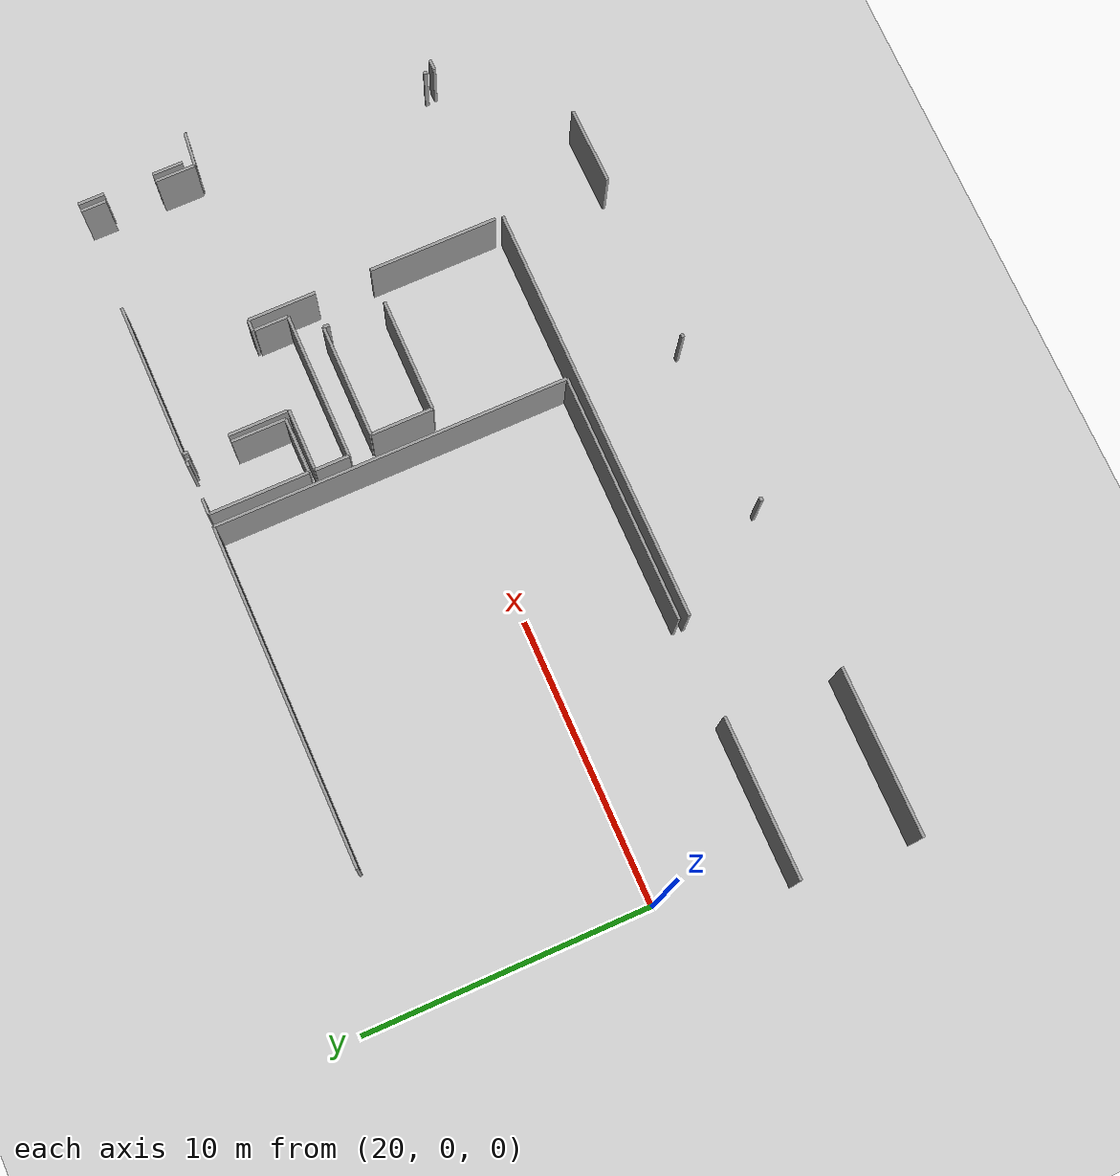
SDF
<sdf version="1.6">
 <world name="default">
  <model name="ground_plane">
   <static>1</static>
   <link name="link">
    <collision name="collision">
     <geometry><plane><normal>0 0 1</normal><size>100 100</size></plane></geometry>
     <surface><friction><ode><mu>100</mu><mu2>50</mu2></ode></friction></surface>
    </collision>
    <visual name="visual">
     <cast_shadows>0</cast_shadows>
     <geometry><plane><normal>0 0 1</normal><size>100 100</size></plane></geometry>
     <material>
      <script><uri>file://media/materials/scripts/gazebo.material</uri><name>Gazebo/Grey</name></script>
     </material>
    </visual>
   </link>
  </model>
  <model name="50041186">
   <static>1</static>
   <link name="Wall_137">
    <collision name="Wall_137_Collision">
     <geometry><box><size>0.144058384896 0.1 2.5</size></box></geometry>
     <pose>0.072029192448 0 1.25 0 0 0</pose>
    </collision>
    <visual name="Wall_137_Visual">
     <pose>0.072029192448 0 1.25 0 0 0</pose>
     <geometry><box><size>0.144058384896 0.1 2.5</size></box></geometry>
     <material>
      <script><uri>file://media/materials/scripts/gazebo.material</uri><name>Gazebo/Grey</name></script>
      <ambient>1 1 1 1</ambient>
     </material>
    </visual>
    <pose>96.1945740124 -16.6153260352 0 0 0 3.14159265359</pose>
   </link>
   <link name="Wall_138">
    <collision name="Wall_138_Collision">
     <geometry><box><size>0.153577661431 0.1 2.5</size></box></geometry>
     <pose>0.0767888307155 0 1.25 0 0 0</pose>
    </collision>
    <visual name="Wall_138_Visual">
     <pose>0.0767888307155 0 1.25 0 0 0</pose>
     <geometry><box><size>0.153577661431 0.1 2.5</size></box></geometry>
     <material>
      <script><uri>file://media/materials/scripts/gazebo.material</uri><name>Gazebo/Grey</name></script>
      <ambient>1 1 1 1</ambient>
     </material>
    </visual>
    <pose>90.2058067587 -16.6153260352 0 0 0 3.14159265359</pose>
   </link>
   <link name="Wall_139">
    <collision name="Wall_139_Collision">
     <geometry><box><size>5.80257020466 0.1 2.5</size></box></geometry>
     <pose>2.90128510233 0 1.25 0 0 0</pose>
    </collision>
    <visual name="Wall_139_Visual">
     <pose>2.90128510233 0 1.25 0 0 0</pose>
     <geometry><box><size>5.80257020466 0.1 2.5</size></box></geometry>
     <material>
      <script><uri>file://media/materials/scripts/gazebo.material</uri><name>Gazebo/Grey</name></script>
      <ambient>1 1 1 1</ambient>
     </material>
    </visual>
    <pose>84.1921624623 -16.6153260352 0 0 0 3.14159265359</pose>
   </link>
   <link name="Wall_143">
    <collision name="Wall_143_Collision">
     <geometry><box><size>14.6525781374 0.1 2.5</size></box></geometry>
     <pose>7.3262890687 0 1.25 0 0 0</pose>
    </collision>
    <visual name="Wall_143_Visual">
     <pose>7.3262890687 0 1.25 0 0 0</pose>
     <geometry><box><size>14.6525781374 0.1 2.5</size></box></geometry>
     <material>
      <script><uri>file://media/materials/scripts/gazebo.material</uri><name>Gazebo/Grey</name></script>
      <ambient>1 1 1 1</ambient>
     </material>
    </visual>
    <pose>87.5939711249 -12.9252736792 0 0 0 0.0</pose>
   </link>
   <link name="Wall_144">
    <collision name="Wall_144_Collision">
     <geometry><box><size>0.378232587657 0.1 2.5</size></box></geometry>
     <pose>0.189116293828 0 1.25 0 0 0</pose>
    </collision>
    <visual name="Wall_144_Visual">
     <pose>0.189116293828 0 1.25 0 0 0</pose>
     <geometry><box><size>0.378232587657 0.1 2.5</size></box></geometry>
     <material>
      <script><uri>file://media/materials/scripts/gazebo.material</uri><name>Gazebo/Grey</name></script>
      <ambient>1 1 1 1</ambient>
     </material>
    </visual>
    <pose>107.966492147 -12.9252736792 0 0 0 0.0</pose>
   </link>
   <link name="Wall_145">
    <collision name="Wall_145_Collision">
     <geometry><box><size>2.69299559623 0.1 2.5</size></box></geometry>
     <pose>1.34649779811 0 1.25 0 0 0</pose>
    </collision>
    <visual name="Wall_145_Visual">
     <pose>1.34649779811 0 1.25 0 0 0</pose>
     <geometry><box><size>2.69299559623 0.1 2.5</size></box></geometry>
     <material>
      <script><uri>file://media/materials/scripts/gazebo.material</uri><name>Gazebo/Grey</name></script>
      <ambient>1 1 1 1</ambient>
     </material>
    </visual>
    <pose>104.73184198 -16.5668411867 0 0 0 -3.12358762295</pose>
   </link>
   <link name="Wall_146">
    <collision name="Wall_146_Collision">
     <geometry><box><size>8.67333016024 0.1 2.5</size></box></geometry>
     <pose>4.33666508012 0 1.25 0 0 0</pose>
    </collision>
    <visual name="Wall_146_Visual">
     <pose>4.33666508012 0 1.25 0 0 0</pose>
     <geometry><box><size>8.67333016024 0.1 2.5</size></box></geometry>
     <material>
      <script><uri>file://media/materials/scripts/gazebo.material</uri><name>Gazebo/Grey</name></script>
      <ambient>1 1 1 1</ambient>
     </material>
    </visual>
    <pose>96.2871013803 -12.5860066635 0 0 0 3.14159265359</pose>
   </link>
   <link name="Wall_147">
    <collision name="Wall_147_Collision">
     <geometry><box><size>5.54047279073 0.1 2.5</size></box></geometry>
     <pose>2.77023639537 0 1.25 0 0 0</pose>
    </collision>
    <visual name="Wall_147_Visual">
     <pose>2.77023639537 0 1.25 0 0 0</pose>
     <geometry><box><size>5.54047279073 0.1 2.5</size></box></geometry>
     <material>
      <script><uri>file://media/materials/scripts/gazebo.material</uri><name>Gazebo/Grey</name></script>
      <ambient>1 1 1 1</ambient>
     </material>
    </visual>
    <pose>84.2459781057 -12.5860066635 0 0 0 3.14159265359</pose>
   </link>
   <link name="Wall_149">
    <collision name="Wall_149_Collision">
     <geometry><box><size>11.811772172 0.1 2.5</size></box></geometry>
     <pose>5.90588608599 0 1.25 0 0 0</pose>
    </collision>
    <visual name="Wall_149_Visual">
     <pose>5.90588608599 0 1.25 0 0 0</pose>
     <geometry><box><size>11.811772172 0.1 2.5</size></box></geometry>
     <material>
      <script><uri>file://media/materials/scripts/gazebo.material</uri><name>Gazebo/Grey</name></script>
      <ambient>1 1 1 1</ambient>
     </material>
    </visual>
    <pose>84.4674599397 -0.256258924322 0 0 0 0.0</pose>
   </link>
   <link name="Wall_150">
    <collision name="Wall_150_Collision">
     <geometry><box><size>12.3297502504 0.1 2.5</size></box></geometry>
     <pose>6.1648751252 0 1.25 0 0 0</pose>
    </collision>
    <visual name="Wall_150_Visual">
     <pose>6.1648751252 0 1.25 0 0 0</pose>
     <geometry><box><size>12.3297502504 0.1 2.5</size></box></geometry>
     <material>
      <script><uri>file://media/materials/scripts/gazebo.material</uri><name>Gazebo/Grey</name></script>
      <ambient>1 1 1 1</ambient>
     </material>
    </visual>
    <pose>96.2792321117 -0.256258924322 0 0 0 -1.57015809253</pose>
   </link>
   <link name="Wall_151">
    <collision name="Wall_151_Collision">
     <geometry><box><size>4.47748691099 0.1 2.5</size></box></geometry>
     <pose>2.2387434555 0 1.25 0 0 0</pose>
    </collision>
    <visual name="Wall_151_Visual">
     <pose>2.2387434555 0 1.25 0 0 0</pose>
     <geometry><box><size>4.47748691099 0.1 2.5</size></box></geometry>
     <material>
      <script><uri>file://media/materials/scripts/gazebo.material</uri><name>Gazebo/Grey</name></script>
      <ambient>1 1 1 1</ambient>
     </material>
    </visual>
    <pose>102.259241631 -12.6640647311 0 0 0 1.57079632679</pose>
   </link>
   <link name="Wall_152">
    <collision name="Wall_152_Collision">
     <geometry><box><size>2.36179597017 0.1 2.5</size></box></geometry>
     <pose>1.18089798509 0 1.25 0 0 0</pose>
    </collision>
    <visual name="Wall_152_Visual">
     <pose>1.18089798509 0 1.25 0 0 0</pose>
     <geometry><box><size>2.36179597017 0.1 2.5</size></box></geometry>
     <material>
      <script><uri>file://media/materials/scripts/gazebo.material</uri><name>Gazebo/Grey</name></script>
      <ambient>1 1 1 1</ambient>
     </material>
    </visual>
    <pose>102.259241631 -6.23157226717 0 0 0 1.57079632679</pose>
   </link>
   <link name="Wall_153">
    <collision name="Wall_153_Collision">
     <geometry><box><size>0.409455814691 0.1 2.5</size></box></geometry>
     <pose>0.204727907346 0 1.25 0 0 0</pose>
    </collision>
    <visual name="Wall_153_Visual">
     <pose>0.204727907346 0 1.25 0 0 0</pose>
     <geometry><box><size>0.409455814691 0.1 2.5</size></box></geometry>
     <material>
      <script><uri>file://media/materials/scripts/gazebo.material</uri><name>Gazebo/Grey</name></script>
      <ambient>1 1 1 1</ambient>
     </material>
    </visual>
    <pose>102.259241631 -3.869776297 0 0 0 3.14159265359</pose>
   </link>
   <link name="Wall_154">
    <collision name="Wall_154_Collision">
     <geometry><box><size>2.05946374742 0.1 2.5</size></box></geometry>
     <pose>1.02973187371 0 1.25 0 0 0</pose>
    </collision>
    <visual name="Wall_154_Visual">
     <pose>1.02973187371 0 1.25 0 0 0</pose>
     <geometry><box><size>2.05946374742 0.1 2.5</size></box></geometry>
     <material>
      <script><uri>file://media/materials/scripts/gazebo.material</uri><name>Gazebo/Grey</name></script>
      <ambient>1 1 1 1</ambient>
     </material>
    </visual>
    <pose>98.8957639219 -3.869776297 0 0 0 1.57079632679</pose>
   </link>
   <link name="Wall_155">
    <collision name="Wall_155_Collision">
     <geometry><box><size>0.170077740758 0.1 2.5</size></box></geometry>
     <pose>0.0850388703792 0 1.25 0 0 0</pose>
    </collision>
    <visual name="Wall_155_Visual">
     <pose>0.0850388703792 0 1.25 0 0 0</pose>
     <geometry><box><size>0.170077740758 0.1 2.5</size></box></geometry>
     <material>
      <script><uri>file://media/materials/scripts/gazebo.material</uri><name>Gazebo/Grey</name></script>
      <ambient>1 1 1 1</ambient>
     </material>
    </visual>
    <pose>98.8957639219 -0.417325083294 0 0 0 1.57079632679</pose>
   </link>
   <link name="Wall_156">
    <collision name="Wall_156_Collision">
     <geometry><box><size>5.39704902427 0.1 2.5</size></box></geometry>
     <pose>2.69852451214 0 1.25 0 0 0</pose>
    </collision>
    <visual name="Wall_156_Visual">
     <pose>2.69852451214 0 1.25 0 0 0</pose>
     <geometry><box><size>5.39704902427 0.1 2.5</size></box></geometry>
     <material>
      <script><uri>file://media/materials/scripts/gazebo.material</uri><name>Gazebo/Grey</name></script>
      <ambient>1 1 1 1</ambient>
     </material>
    </visual>
    <pose>98.8957639219 -0.247247342535 0 0 0 0.0</pose>
   </link>
   <link name="Wall_157">
    <collision name="Wall_157_Collision">
     <geometry><box><size>0.878946533397 0.1 2.5</size></box></geometry>
     <pose>0.439473266698 0 1.25 0 0 0</pose>
    </collision>
    <visual name="Wall_157_Visual">
     <pose>0.439473266698 0 1.25 0 0 0</pose>
     <geometry><box><size>0.878946533397 0.1 2.5</size></box></geometry>
     <material>
      <script><uri>file://media/materials/scripts/gazebo.material</uri><name>Gazebo/Grey</name></script>
      <ambient>1 1 1 1</ambient>
     </material>
    </visual>
    <pose>107.976646042 -0.247247342535 0 0 0 -1.57079632679</pose>
   </link>
   <link name="Wall_158">
    <collision name="Wall_158_Collision">
     <geometry><box><size>1.39590671109 0.1 2.5</size></box></geometry>
     <pose>0.697953355545 0 1.25 0 0 0</pose>
    </collision>
    <visual name="Wall_158_Visual">
     <pose>0.697953355545 0 1.25 0 0 0</pose>
     <geometry><box><size>1.39590671109 0.1 2.5</size></box></geometry>
     <material>
      <script><uri>file://media/materials/scripts/gazebo.material</uri><name>Gazebo/Grey</name></script>
      <ambient>1 1 1 1</ambient>
     </material>
    </visual>
    <pose>107.976646042 -2.88903696652 0 0 0 -1.57079632679</pose>
   </link>
   <link name="Wall_159">
    <collision name="Wall_159_Collision">
     <geometry><box><size>1.21389966327 0.1 2.5</size></box></geometry>
     <pose>0.606949831634 0 1.25 0 0 0</pose>
    </collision>
    <visual name="Wall_159_Visual">
     <pose>0.606949831634 0 1.25 0 0 0</pose>
     <geometry><box><size>1.21389966327 0.1 2.5</size></box></geometry>
     <material>
      <script><uri>file://media/materials/scripts/gazebo.material</uri><name>Gazebo/Grey</name></script>
      <ambient>1 1 1 1</ambient>
     </material>
    </visual>
    <pose>107.976646042 -4.28494367761 0 0 0 -0.106327244193</pose>
   </link>
   <link name="Wall_171">
    <collision name="Wall_171_Collision">
     <geometry><box><size>0.130355013945 0.1 2.5</size></box></geometry>
     <pose>0.0651775069724 0 1.25 0 0 0</pose>
    </collision>
    <visual name="Wall_171_Visual">
     <pose>0.0651775069724 0 1.25 0 0 0</pose>
     <geometry><box><size>0.130355013945 0.1 2.5</size></box></geometry>
     <material>
      <script><uri>file://media/materials/scripts/gazebo.material</uri><name>Gazebo/Grey</name></script>
      <ambient>1 1 1 1</ambient>
     </material>
    </visual>
    <pose>107.9855307 -12.5346025702 0 0 0 -1.68790507136</pose>
   </link>
   <link name="Wall_172">
    <collision name="Wall_172_Collision">
     <geometry><box><size>3.96395367285 0.1 2.5</size></box></geometry>
     <pose>1.98197683643 0 1.25 0 0 0</pose>
    </collision>
    <visual name="Wall_172_Visual">
     <pose>1.98197683643 0 1.25 0 0 0</pose>
     <geometry><box><size>3.96395367285 0.1 2.5</size></box></geometry>
     <material>
      <script><uri>file://media/materials/scripts/gazebo.material</uri><name>Gazebo/Grey</name></script>
      <ambient>1 1 1 1</ambient>
     </material>
    </visual>
    <pose>101.054228145 -8.18733936221 0 0 0 3.14159265359</pose>
   </link>
   <link name="Wall_173">
    <collision name="Wall_173_Collision">
     <geometry><box><size>2.15656036808 0.1 2.5</size></box></geometry>
     <pose>1.07828018404 0 1.25 0 0 0</pose>
    </collision>
    <visual name="Wall_173_Visual">
     <pose>1.07828018404 0 1.25 0 0 0</pose>
     <geometry><box><size>2.15656036808 0.1 2.5</size></box></geometry>
     <material>
      <script><uri>file://media/materials/scripts/gazebo.material</uri><name>Gazebo/Grey</name></script>
      <ambient>1 1 1 1</ambient>
     </material>
    </visual>
    <pose>97.0902744725 -8.18733936221 0 0 0 1.57079632679</pose>
   </link>
   <link name="Wall_174">
    <collision name="Wall_174_Collision">
     <geometry><box><size>3.96585752816 0.1 2.5</size></box></geometry>
     <pose>1.98292876408 0 1.25 0 0 0</pose>
    </collision>
    <visual name="Wall_174_Visual">
     <pose>1.98292876408 0 1.25 0 0 0</pose>
     <geometry><box><size>3.96585752816 0.1 2.5</size></box></geometry>
     <material>
      <script><uri>file://media/materials/scripts/gazebo.material</uri><name>Gazebo/Grey</name></script>
      <ambient>1 1 1 1</ambient>
     </material>
    </visual>
    <pose>97.0902744725 -6.03077899413 0 0 0 0.0</pose>
   </link>
   <link name="Wall_175">
    <collision name="Wall_175_Collision">
     <geometry><box><size>0.196487091571 0.1 2.5</size></box></geometry>
     <pose>0.0982435457854 0 1.25 0 0 0</pose>
    </collision>
    <visual name="Wall_175_Visual">
     <pose>0.0982435457854 0 1.25 0 0 0</pose>
     <geometry><box><size>0.196487091571 0.1 2.5</size></box></geometry>
     <material>
      <script><uri>file://media/materials/scripts/gazebo.material</uri><name>Gazebo/Grey</name></script>
      <ambient>1 1 1 1</ambient>
     </material>
    </visual>
    <pose>101.056132001 -6.03077899413 0 0 0 -1.58048594602</pose>
   </link>
   <link name="Wall_176">
    <collision name="Wall_176_Collision">
     <geometry><box><size>5.1491670633 0.1 2.5</size></box></geometry>
     <pose>2.57458353165 0 1.25 0 0 0</pose>
    </collision>
    <visual name="Wall_176_Visual">
     <pose>2.57458353165 0 1.25 0 0 0</pose>
     <geometry><box><size>5.1491670633 0.1 2.5</size></box></geometry>
     <material>
      <script><uri>file://media/materials/scripts/gazebo.material</uri><name>Gazebo/Grey</name></script>
      <ambient>1 1 1 1</ambient>
     </material>
    </visual>
    <pose>101.859432017 -5.11324765984 0 0 0 3.14159265359</pose>
   </link>
   <link name="Wall_177">
    <collision name="Wall_177_Collision">
     <geometry><box><size>1.18508646676 0.1 2.5</size></box></geometry>
     <pose>0.592543233381 0 1.25 0 0 0</pose>
    </collision>
    <visual name="Wall_177_Visual">
     <pose>0.592543233381 0 1.25 0 0 0</pose>
     <geometry><box><size>1.18508646676 0.1 2.5</size></box></geometry>
     <material>
      <script><uri>file://media/materials/scripts/gazebo.material</uri><name>Gazebo/Grey</name></script>
      <ambient>1 1 1 1</ambient>
     </material>
    </visual>
    <pose>96.7102649532 -5.11324765984 0 0 0 1.57079632679</pose>
   </link>
   <link name="Wall_178">
    <collision name="Wall_178_Collision">
     <geometry><box><size>2.17978740282 0.1 2.5</size></box></geometry>
     <pose>1.08989370141 0 1.25 0 0 0</pose>
    </collision>
    <visual name="Wall_178_Visual">
     <pose>1.08989370141 0 1.25 0 0 0</pose>
     <geometry><box><size>2.17978740282 0.1 2.5</size></box></geometry>
     <material>
      <script><uri>file://media/materials/scripts/gazebo.material</uri><name>Gazebo/Grey</name></script>
      <ambient>1 1 1 1</ambient>
     </material>
    </visual>
    <pose>96.7102649532 -3.92816119308 0 0 0 0.0</pose>
   </link>
   <link name="Wall_179">
    <collision name="Wall_179_Collision">
     <geometry><box><size>1.18509342668 0.1 2.5</size></box></geometry>
     <pose>0.592546713339 0 1.25 0 0 0</pose>
    </collision>
    <visual name="Wall_179_Visual">
     <pose>0.592546713339 0 1.25 0 0 0</pose>
     <geometry><box><size>1.18509342668 0.1 2.5</size></box></geometry>
     <material>
      <script><uri>file://media/materials/scripts/gazebo.material</uri><name>Gazebo/Grey</name></script>
      <ambient>1 1 1 1</ambient>
     </material>
    </visual>
    <pose>101.855370459 -3.92816119308 0 0 0 -1.56736911519</pose>
   </link>
   <link name="Wall_180">
    <collision name="Wall_180_Collision">
     <geometry><box><size>1.94447088688 0.1 2.5</size></box></geometry>
     <pose>0.97223544344 0 1.25 0 0 0</pose>
    </collision>
    <visual name="Wall_180_Visual">
     <pose>0.97223544344 0 1.25 0 0 0</pose>
     <geometry><box><size>1.94447088688 0.1 2.5</size></box></geometry>
     <material>
      <script><uri>file://media/materials/scripts/gazebo.material</uri><name>Gazebo/Grey</name></script>
      <ambient>1 1 1 1</ambient>
     </material>
    </visual>
    <pose>98.6631128034 -3.71962557512 0 0 0 3.14159265359</pose>
   </link>
   <link name="Wall_181">
    <collision name="Wall_181_Collision">
     <geometry><box><size>3.45397429795 0.1 2.5</size></box></geometry>
     <pose>1.72698714898 0 1.25 0 0 0</pose>
    </collision>
    <visual name="Wall_181_Visual">
     <pose>1.72698714898 0 1.25 0 0 0</pose>
     <geometry><box><size>3.45397429795 0.1 2.5</size></box></geometry>
     <material>
      <script><uri>file://media/materials/scripts/gazebo.material</uri><name>Gazebo/Grey</name></script>
      <ambient>1 1 1 1</ambient>
     </material>
    </visual>
    <pose>96.7186419165 -3.71962557512 0 0 0 1.57079632679</pose>
   </link>
   <link name="Wall_182">
    <collision name="Wall_182_Collision">
     <geometry><box><size>0.549833412661 0.1 2.5</size></box></geometry>
     <pose>0.27491670633 0 1.25 0 0 0</pose>
    </collision>
    <visual name="Wall_182_Visual">
     <pose>0.27491670633 0 1.25 0 0 0</pose>
     <geometry><box><size>0.549833412661 0.1 2.5</size></box></geometry>
     <material>
      <script><uri>file://media/materials/scripts/gazebo.material</uri><name>Gazebo/Grey</name></script>
      <ambient>1 1 1 1</ambient>
     </material>
    </visual>
    <pose>96.7186419165 -0.26565127717 0 0 0 0.0</pose>
   </link>
   <link name="Wall_183">
    <collision name="Wall_183_Collision">
     <geometry><box><size>0.215770268126 0.1 2.5</size></box></geometry>
     <pose>0.107885134063 0 1.25 0 0 0</pose>
    </collision>
    <visual name="Wall_183_Visual">
     <pose>0.107885134063 0 1.25 0 0 0</pose>
     <geometry><box><size>0.215770268126 0.1 2.5</size></box></geometry>
     <material>
      <script><uri>file://media/materials/scripts/gazebo.material</uri><name>Gazebo/Grey</name></script>
      <ambient>1 1 1 1</ambient>
     </material>
    </visual>
    <pose>98.4468348406 -0.26565127717 0 0 0 0.0</pose>
   </link>
   <link name="Wall_184">
    <collision name="Wall_184_Collision">
     <geometry><box><size>0.132762176741 0.1 2.5</size></box></geometry>
     <pose>0.0663810883706 0 1.25 0 0 0</pose>
    </collision>
    <visual name="Wall_184_Visual">
     <pose>0.0663810883706 0 1.25 0 0 0</pose>
     <geometry><box><size>0.132762176741 0.1 2.5</size></box></geometry>
     <material>
      <script><uri>file://media/materials/scripts/gazebo.material</uri><name>Gazebo/Grey</name></script>
      <ambient>1 1 1 1</ambient>
     </material>
    </visual>
    <pose>98.6626051087 -0.26565127717 0 0 0 -1.57079632679</pose>
   </link>
   <link name="Wall_185">
    <collision name="Wall_185_Collision">
     <geometry><box><size>1.90283998523 0.1 2.5</size></box></geometry>
     <pose>0.951419992614 0 1.25 0 0 0</pose>
    </collision>
    <visual name="Wall_185_Visual">
     <pose>0.951419992614 0 1.25 0 0 0</pose>
     <geometry><box><size>1.90283998523 0.1 2.5</size></box></geometry>
     <material>
      <script><uri>file://media/materials/scripts/gazebo.material</uri><name>Gazebo/Grey</name></script>
      <ambient>1 1 1 1</ambient>
     </material>
    </visual>
    <pose>98.6626051087 -1.81678565762 0 0 0 -1.57052951784</pose>
   </link>
   <link name="Wall_194">
    <collision name="Wall_194_Collision">
     <geometry><box><size>1.06641281929 0.1 2.5</size></box></geometry>
     <pose>0.533206409646 0 1.25 0 0 0</pose>
    </collision>
    <visual name="Wall_194_Visual">
     <pose>0.533206409646 0 1.25 0 0 0</pose>
     <geometry><box><size>1.06641281929 0.1 2.5</size></box></geometry>
     <material>
      <script><uri>file://media/materials/scripts/gazebo.material</uri><name>Gazebo/Grey</name></script>
      <ambient>1 1 1 1</ambient>
     </material>
    </visual>
    <pose>108.235570363 -3.94948437252 0 0 0 1.57079632679</pose>
   </link>
   <link name="Wall_195">
    <collision name="Wall_195_Collision">
     <geometry><box><size>0.916135173727 0.1 2.5</size></box></geometry>
     <pose>0.458067586863 0 1.25 0 0 0</pose>
    </collision>
    <visual name="Wall_195_Visual">
     <pose>0.458067586863 0 1.25 0 0 0</pose>
     <geometry><box><size>0.916135173727 0.1 2.5</size></box></geometry>
     <material>
      <script><uri>file://media/materials/scripts/gazebo.material</uri><name>Gazebo/Grey</name></script>
      <ambient>1 1 1 1</ambient>
     </material>
    </visual>
    <pose>108.235570363 -1.16287482151 0 0 0 1.57079632679</pose>
   </link>
   <pose>-59.9 8.31532603522 0 0 0 0</pose>
  </model>
 </world>
</sdf>
